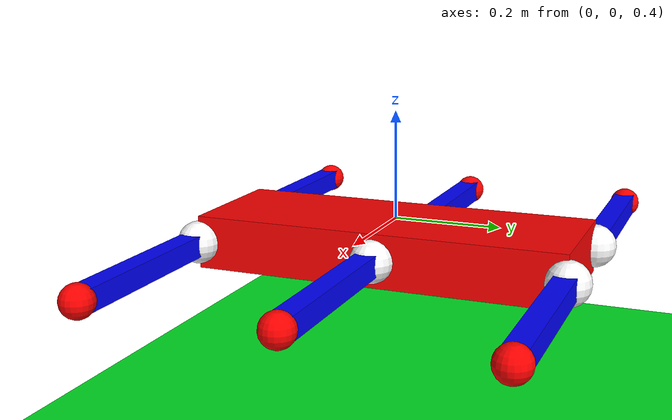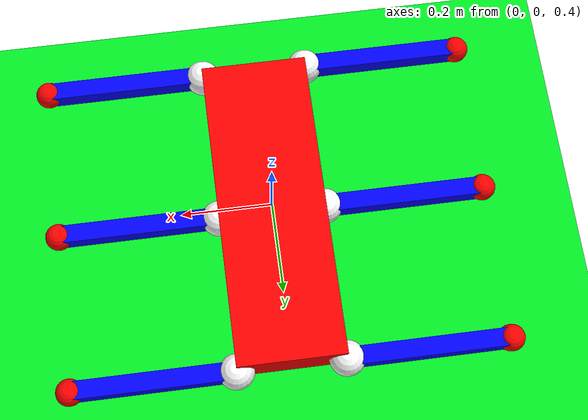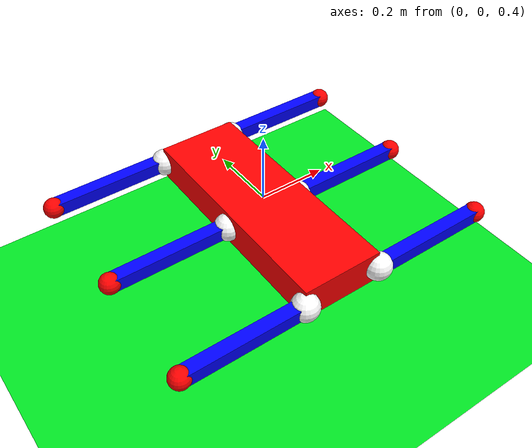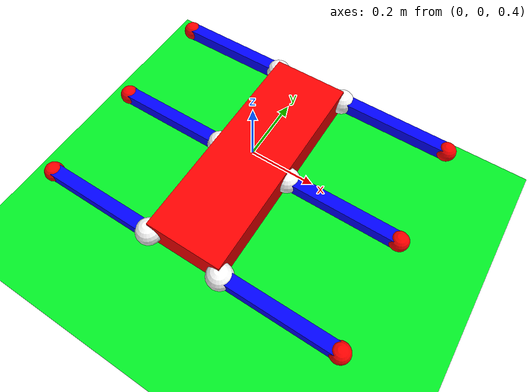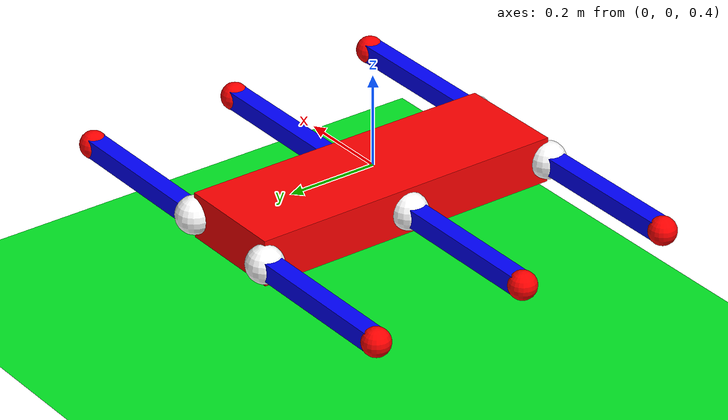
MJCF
<mujoco model="genghis">
    <default>
        <joint type="hinge" damping="1"/>
        <position kp="50"/>
        <geom density="1000" contype="1" conaffinity="1" friction="1 0.005 0.0001"/>
    </default>

    <worldbody>
        <light name="top" pos="0 0 4"/>
        <camera name="plan" pos="0 0 40" quat="1 0 0 0" fovy="10"/>
        <camera name="zoom_plan" pos="0 0 40" quat="1 0 0 0" fovy="5"/>
        <camera name="side" pos="4 0 0.5" quat="1 1 1 1"/>

        <body name="plain">
            <geom name="ground" type="plane" size="0 0 0.1" rgba="0.00 0.91 0.14 1" friction="1.0 0.1 0.0" contype="1" conaffinity="1"/>
        </body>

        <body name="genghis" pos="0 0 0.35">
            <freejoint/>
            <camera name="track_genghis" pos="0 0 7" quat="1 0 0 0" fovy="55"/>
            <geom name="genghis_body" type="box" size="0.12 0.35 0.05" rgba="1 0 0 1" density="1000" contype="1" conaffinity="1"/>

            <!-- Leg 1 (front right) -->
            <body name="leg1_base" pos="0.12 0.35 0">
                <joint name="leg1_pitch" axis="0 -1 0" limited="true" range="-115 -10"/>
                <joint name="leg1_yaw" axis="0 0 1" limited="true" range="-60 60"/>
                <geom name="ball1" size="0.04 0.04 0.04" rgba="1 1 1 1" density="1000" contype="1" conaffinity="1"/>

                <body name="leg1" pos="0.18 0 0">
                    <geom type="box" size="0.18 0.02 0.02" rgba="0 0 1 1" friction="1.0 0.1 0.0" density="1000" contype="1" conaffinity="1"/>
                    <geom pos="0.18 0 0" size="0.03" rgba="1 0 0 1" friction="1.0 0.1 0.0" density="1000" contype="1" conaffinity="1"/>
                    <site name="leg1_site" pos="0.18 0 0" size="0.03" rgba="0 0 0 0" type="sphere"/>
                </body>
            </body>

            <!-- Leg 2 (middle right) -->
            <body name="leg2_base" pos="0.12 0 0">
                <joint name="leg2_pitch" axis="0 -1 0" limited="true" range="-115 -10"/>
                <joint name="leg2_yaw" axis="0 0 1" limited="true" range="-60 60"/>
                <geom name="ball2" size="0.04 0.04 0.04" rgba="1 1 1 1" density="1000" contype="1" conaffinity="1"/>

                <body name="leg2" pos="0.18 0 0">
                    <geom type="box" size="0.18 0.02 0.02" rgba="0 0 1 1" friction="1.0 0.1 0.0" density="1000" contype="1" conaffinity="1"/>
                    <geom pos="0.18 0 0" size="0.03" rgba="1 0 0 1" friction="1.0 0.1 0.0" density="1000" contype="1" conaffinity="1"/>
                    <site name="leg2_site" pos="0.18 0 0" size="0.03" rgba="0 0 0 0" type="sphere"/>
                </body>
            </body>

            <!-- Leg 3 (rear right) -->
            <body name="leg3_base" pos="0.12 -0.35 0">
                <joint name="leg3_pitch" axis="0 -1 0" limited="true" range="-115 -10"/>
                <joint name="leg3_yaw" axis="0 0 1" limited="true" range="-60 60"/>
                <geom name="ball3" size="0.04 0.04 0.04" rgba="1 1 1 1" density="1000" contype="1" conaffinity="1"/>

                <body name="leg3" pos="0.18 0 0">
                    <geom type="box" size="0.18 0.02 0.02" rgba="0 0 1 1" friction="1.0 0.1 0.0" density="1000" contype="1" conaffinity="1"/>
                    <geom pos="0.18 0 0" size="0.03" rgba="1 0 0 1" friction="1.0 0.1 0.0" density="1000" contype="1" conaffinity="1"/>
                    <site name="leg3_site" pos="0.18 0 0" size="0.03" rgba="0 0 0 0" type="sphere"/>
                </body>
            </body>

            <!-- Leg 4 (front left) -->
            <body name="leg4_base" pos="-0.12 0.35 0">
                <joint name="leg4_pitch" axis="0 1 0" limited="true" range="-115 -10"/>
                <joint name="leg4_yaw" axis="0 0 1" limited="true" range="-60 60"/>
                <geom name="ball4" size="0.04 0.04 0.04" rgba="1 1 1 1" density="1000" contype="1" conaffinity="1"/>

                <body name="leg4" pos="-0.18 0 0">
                    <geom type="box" size="0.18 0.02 0.02" rgba="0 0 1 1" friction="1.0 0.1 0.0" density="1000" contype="1" conaffinity="1"/>
                    <geom pos="-0.18 0 0" size="0.03" rgba="1 0 0 1" friction="1.0 0.1 0.0" density="1000" contype="1" conaffinity="1"/>
                    <site name="leg4_site" pos="-0.18 0 0" size="0.03" rgba="0 0 0 0" type="sphere"/>
                </body>
            </body>

            <!-- Leg 5 (middle left) -->
            <body name="leg5_base" pos="-0.12 0 0">
                <joint name="leg5_pitch" axis="0 1 0" limited="true" range="-115 -10"/>
                <joint name="leg5_yaw" axis="0 0 1" limited="true" range="-60 60"/>
                <geom name="ball5" size="0.04 0.04 0.04" rgba="1 1 1 1" density="1000" contype="1" conaffinity="1"/>

                <body name="leg5" pos="-0.18 0 0">
                    <geom type="box" size="0.18 0.02 0.02" rgba="0 0 1 1" friction="1.0 0.1 0.0" density="1000" contype="1" conaffinity="1"/>
                    <geom pos="-0.18 0 0" size="0.03" rgba="1 0 0 1" friction="1.0 0.1 0.0" density="1000" contype="1" conaffinity="1"/>
                    <site name="leg5_site" pos="-0.18 0 0" size="0.03" rgba="0 0 0 0" type="sphere"/>
                </body>
            </body>

            <!-- Leg 6 (rear left) -->
            <body name="leg6_base" pos="-0.12 -0.35 0">
                <joint name="leg6_pitch" axis="0 1 0" limited="true" range="-115 -10"/>
                <joint name="leg6_yaw" axis="0 0 1" limited="true" range="-60 60"/>
                <geom name="ball6" size="0.04 0.04 0.04" rgba="1 1 1 1" density="1000" contype="1" conaffinity="1"/>

                <body name="leg6" pos="-0.18 0 0">
                    <geom type="box" size="0.18 0.02 0.02" rgba="0 0 1 1" friction="1.0 0.1 0.0" density="1000" contype="1" conaffinity="1"/>
                    <geom pos="-0.18 0 0" size="0.03" rgba="1 0 0 1" friction="1.0 0.1 0.0" density="1000" contype="1" conaffinity="1"/>
                    <site name="leg6_site" pos="-0.18 0 0" size="0.03" rgba="0 0 0 0" type="sphere"/>
                </body>
            </body>

        </body>
    </worldbody>

    <actuator>
        <!-- right -->
            <!-- pitch -->
            <position name="leg1_pitch_actuator" joint="leg1_pitch" inheritrange="1"/>
            <position name="leg2_pitch_actuator" joint="leg2_pitch" inheritrange="1"/>
            <position name="leg3_pitch_actuator" joint="leg3_pitch" inheritrange="1"/>

            <!-- yaw -->
            <position name="leg1_yaw_actuator" joint="leg1_yaw" inheritrange="1"/>
            <position name="leg2_yaw_actuator" joint="leg2_yaw" inheritrange="1"/>
            <position name="leg3_yaw_actuator" joint="leg3_yaw" inheritrange="1"/>

        <!-- left -->
            <!-- pitch -->
            <position name="leg4_pitch_actuator" joint="leg4_pitch" inheritrange="1"/>
            <position name="leg5_pitch_actuator" joint="leg5_pitch" inheritrange="1"/>
            <position name="leg6_pitch_actuator" joint="leg6_pitch" inheritrange="1"/>

            <!-- yaw -->
            <position name="leg4_yaw_actuator" joint="leg4_yaw" inheritrange="1"/>
            <position name="leg5_yaw_actuator" joint="leg5_yaw" inheritrange="1"/>
            <position name="leg6_yaw_actuator" joint="leg6_yaw" inheritrange="1"/>
    </actuator>

    <sensor>
        <!-- right -->
        <touch name="leg1_sensor" site="leg1_site"/>
        <touch name="leg2_sensor" site="leg2_site"/>
        <touch name="leg3_sensor" site="leg3_site"/>

        <!-- left -->
        <touch name="leg4_sensor" site="leg4_site"/>
        <touch name="leg5_sensor" site="leg5_site"/>
        <touch name="leg6_sensor" site="leg6_site"/>
    </sensor>
</mujoco>
